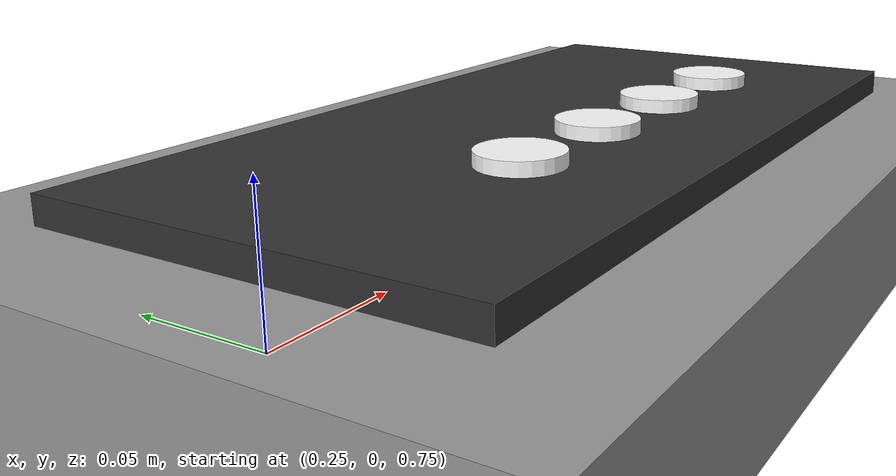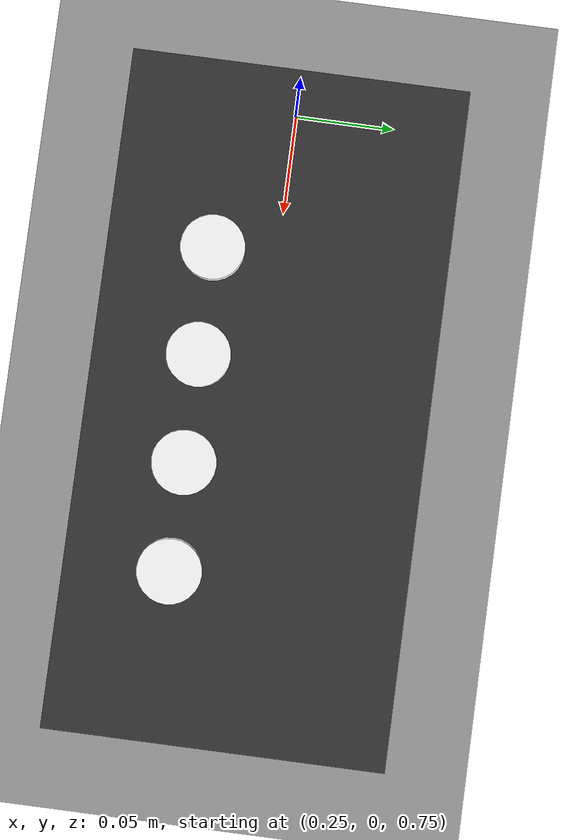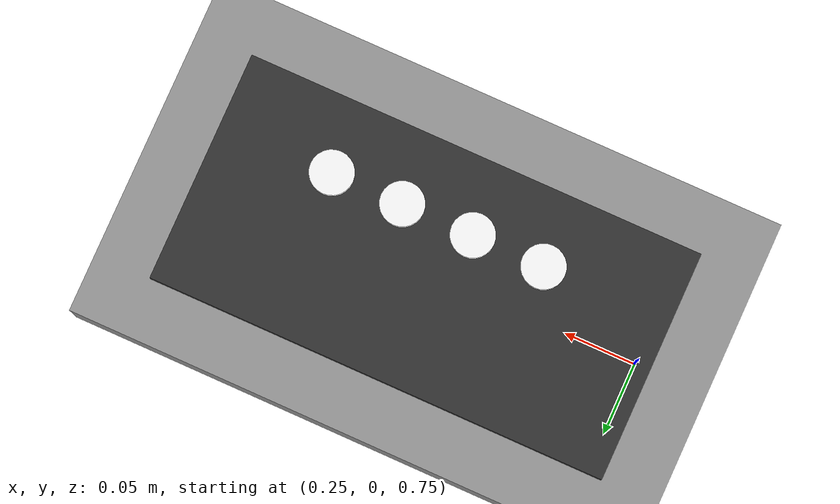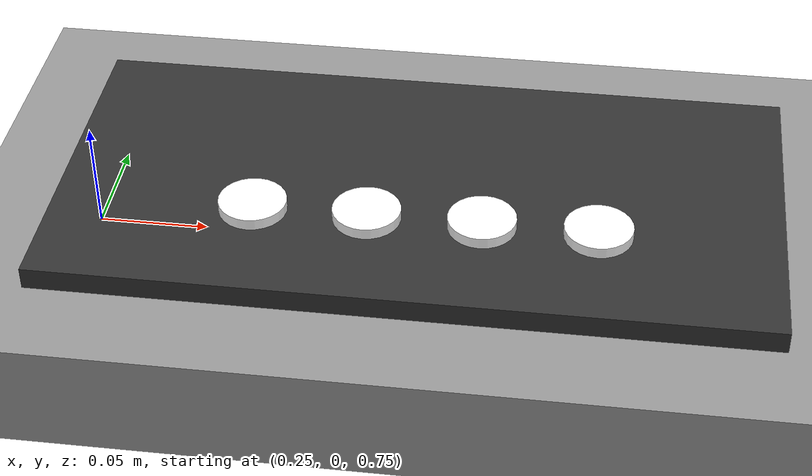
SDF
<?xml version="1.0" ?>
<sdf version="1.7">
  <model name="gameboard">
    <static>true</static>

    <!-- Main Table -->
    <link name="table_link">
      <pose>0 0 0 0 0 0</pose>
      <collision name="col">
        <geometry><box><size>1.2 0.8 0.05</size></box></geometry>
        <pose>0 0 0.75 0 0 0</pose>
      </collision>
      <visual name="visual">
        <geometry><box><size>1.2 0.8 0.05</size></box></geometry>
        <pose>0 0 0.75 0 0 0</pose>
        <material><ambient>0.6 0.6 0.6 1</ambient><diffuse>0.6 0.6 0.6 1</diffuse></material>
      </visual>
    </link>

    <!-- The Game Board Plate -->
    <link name="board_link">
      <pose>0.4 0.0 0.775 0 0 0</pose>
      <visual name="visual">
        <geometry><box><size>0.32 0.16 0.02</size></box></geometry>
        <material><ambient>0.2 0.2 0.2 1</ambient><diffuse>0.2 0.2 0.2 1</diffuse></material>
      </visual>
      <collision name="col">
        <geometry><box><size>0.32 0.16 0.02</size></box></geometry>
      </collision>
    </link>

    <!-- Small Trays / Decoding Wells -->
    <link name="well_1">
      <pose>0.33 -0.03 0.79 0 0 0</pose>
      <visual name="v"><geometry><cylinder><radius>0.015</radius><length>0.005</length></cylinder></geometry><material><ambient>1 1 1 1</ambient></material></visual>
    </link>
    <link name="well_2">
      <pose>0.38 -0.03 0.79 0 0 0</pose>
      <visual name="v"><geometry><cylinder><radius>0.015</radius><length>0.005</length></cylinder></geometry><material><ambient>1 1 1 1</ambient></material></visual>
    </link>
    <link name="well_3">
      <pose>0.43 -0.03 0.79 0 0 0</pose>
      <visual name="v"><geometry><cylinder><radius>0.015</radius><length>0.005</length></cylinder></geometry><material><ambient>1 1 1 1</ambient></material></visual>
    </link>
    <link name="well_4">
      <pose>0.48 -0.03 0.79 0 0 0</pose>
      <visual name="v"><geometry><cylinder><radius>0.015</radius><length>0.005</length></cylinder></geometry><material><ambient>1 1 1 1</ambient></material></visual>
    </link>
  </model>
</sdf>
